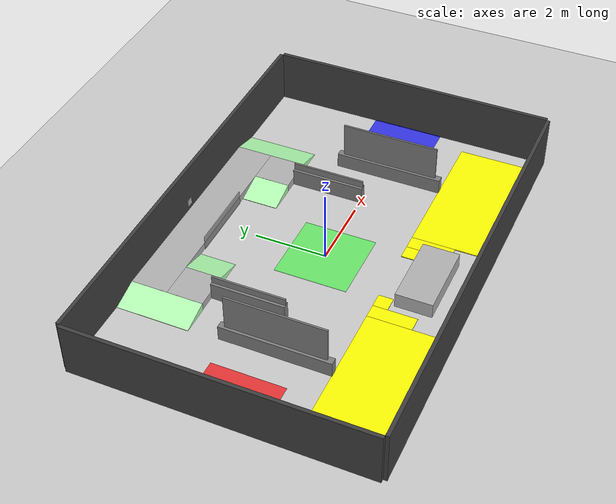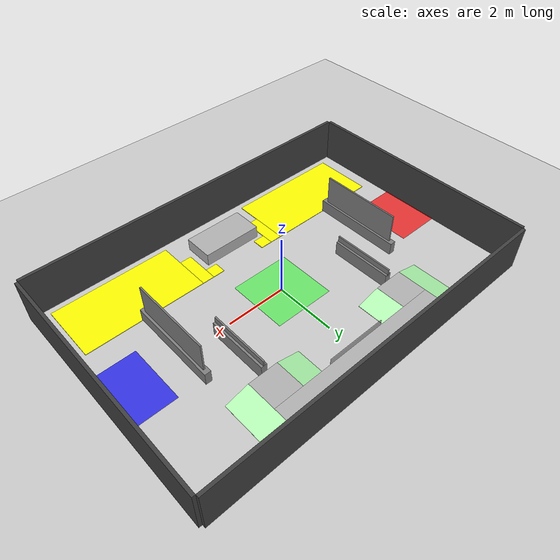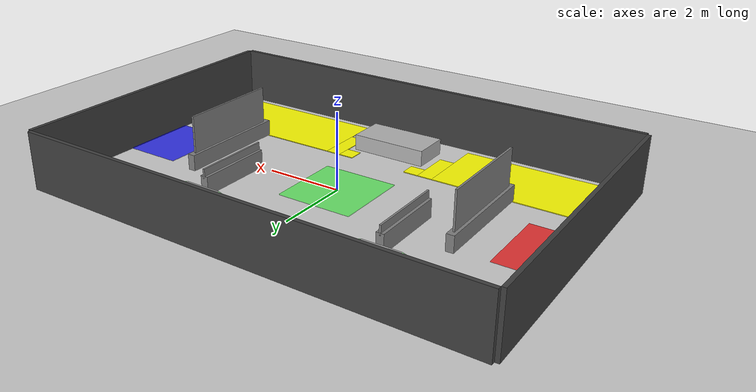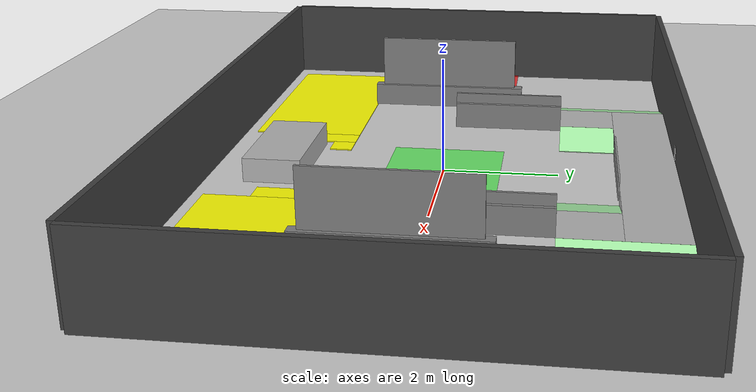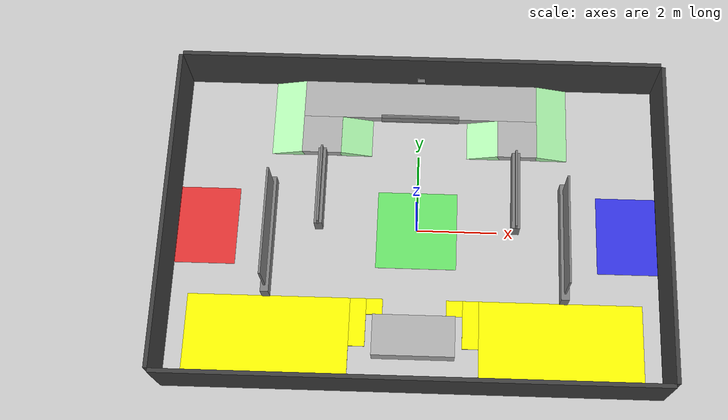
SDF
<?xml version="1.0" ?>
<sdf version="1.6">
  <world name="competition_world">

    <include>
      <uri>model://sun</uri>
    </include>

    <include>
      <uri>model://ground_plane</uri>
    </include>

    <!-- Competition arena walls (18m x 12m from your map) -->
    <model name="arena">
      <static>true</static>
      <pose>0 0 0 0 0 0</pose>

      <!--Note, the bounding walls are 0.1m thickness, and the position offset is half of that at 0.05m-->
      <!-- this is so our dimensions are exact, and are walls aren't poking into the map by a small amount-->

      <!-- North wall, +0.05 offset for wall thickness -->
      <link name="north_wall">
        <pose>0 4.05 0.75 0 0 0</pose>
        <collision name="collision">
          <geometry>
            <box>
              <size>12 0.1 1.5</size>
            </box>
          </geometry>
        </collision>
        <visual name="visual">
          <geometry>
            <box>
              <size>12 0.1 1.5</size>
            </box>
          </geometry>
          <material>
            <ambient>0.25 0.25 0.25 1</ambient>
            <diffuse>0.25 0.25 0.25 1</diffuse>
          </material>
        </visual>
      </link>

      <!-- South wall,  minus 0.05 offset-->
      <link name="south_wall">
        <pose>0 -4.05 0.75 0 0 0</pose>
        <collision name="collision">
          <geometry>
            <box>
              <size>12 0.1 1.5</size>
            </box>
          </geometry>
        </collision>
        <visual name="visual">
          <geometry>
            <box>
              <size>12 0.1 1.5</size>
            </box>
          </geometry>
          <material>
            <ambient>0.25 0.25 0.25 1</ambient>
            <diffuse>0.25 0.25 0.25 1</diffuse>
          </material>
        </visual>
      </link>

      <!-- East wall, plus 0.05 offset -->
      <link name="east_wall">
        <pose>6.05 0 0.75 0 0 0</pose>
        <collision name="collision">
          <geometry>
            <box>
              <size>0.1 8 1.5</size>
            </box>
          </geometry>
        </collision>
        <visual name="visual">
          <geometry>
            <box>
              <size>0.1 8 1.5</size>
            </box>
          </geometry>
          <material>
            <ambient>0.25 0.25 0.25 1</ambient>
            <diffuse>0.25 0.25 0.25 1</diffuse>
          </material>
        </visual>
      </link>

      <!-- West wall, minus 0.05 offset  -->
      <link name="west_wall">
        <pose>-6.05 0 0.75 0 0 0</pose>
        <collision name="collision">
          <geometry>
            <box>
              <size>0.1 8 1.5</size>
            </box>
          </geometry>
        </collision>
        <visual name="visual">
          <geometry>
            <box>
              <size>0.1 8 1.5</size>
            </box>
          </geometry>
          <material>
            <ambient>0.25 0.25 0.25 1</ambient>
            <diffuse>0.25 0.25 0.25 1</diffuse>
          </material>
        </visual>
      </link>

      <!-- West inner wall -->
      <link name="west_inner_wall_bottom"> <!-- -3.750 + 0.1 to account for width in x dir-->
        <pose>-3.650 -0.317 0.24 0 0 0</pose>
        <collision name="collision">
          <geometry>
            <box>
              <size>0.2 3.0 0.42</size>
            </box>
          </geometry>
        </collision>
        <visual name="visual">
          <geometry>
            <box>
              <size>0.2 3.0 0.42</size>
            </box>
          </geometry>
          <material>
            <ambient>0.5 0.5 0.5 1</ambient>
            <diffuse>0.5 0.5 0.5 1</diffuse>
          </material>
        </visual>
      </link>

      <link name="west_inner_wall_top"> <!-- +0.1 to account for width in x dir-->
        <pose>-3.650 -0.317 0.9315 0 0 0</pose>
        <collision name="collision">
          <geometry>
            <box>
              <size>0.05 2.7 0.987</size>
            </box>
          </geometry>
        </collision>
        <visual name="visual">
          <geometry>
            <box>
              <size>0.05 2.7 0.987</size>
            </box>
          </geometry>
          <material>
            <ambient>0.5 0.5 0.5 1</ambient>
            <diffuse>0.5 0.5 0.5 1</diffuse>
          </material>
        </visual>
      </link>

      <link name="mid_left_wall_bottom"> <!-- +0.1 to account for width in x dir?? may need to adjust-->
        <pose>-2.450 0.9873 0.24 0 0 0</pose>
        <collision name="collision">
          <geometry>
            <box>
              <size>0.2 2.0254 0.48</size>
            </box>
          </geometry>
        </collision>
        <visual name="visual">
          <geometry>
            <box>
              <size>0.2 2.0254 0.48</size>
            </box>
          </geometry>
          <material>
            <ambient>0.5 0.5 0.5 1</ambient>
            <diffuse>0.5 0.5 0.5 1</diffuse>
          </material>
        </visual>
      </link>

      <link name="mid_left_wall_top"> <!-- +0.1 to account for width in x dir?? may need to adjust-->
        <pose>-2.450 0.9873 0.545 0 0 0 0</pose>
        <collision name="collision">
          <geometry>
            <box>
              <size>0.05 2.0254 0.25</size>
            </box>
          </geometry>
        </collision>
        <visual name="visual">
          <geometry>
            <box>
              <size>0.05 2.0254 0.25</size>
            </box>
          </geometry>
          <material>
            <ambient>0.5 0.5 0.5 1</ambient>
            <diffuse>0.5 0.5 0.5 1</diffuse>
          </material>
        </visual>
      </link>

      <!-- east inner wall -->
      <link name="east_inner_wall_bottom">
        <pose>3.650 -0.317 0.24 0 0 0</pose>
        <collision name="collision">
          <geometry>
            <box>
              <size>0.2 3.0 0.42</size>
            </box>
          </geometry>
        </collision>
        <visual name="visual">
          <geometry>
            <box>
              <size>0.2 3.0 0.42</size>
            </box>
          </geometry>
          <material>
            <ambient>0.5 0.5 0.5 1</ambient>
            <diffuse>0.5 0.5 0.5 1</diffuse>
          </material>
        </visual>
      </link>

      <link name="east_inner_wall_top">
        <pose>3.650 -0.317 0.9315 0 0 0</pose>
        <collision name="collision">
          <geometry>
            <box>
              <size>0.05 2.7 0.987</size>
            </box>
          </geometry>
        </collision>
        <visual name="visual">
          <geometry>
            <box>
              <size>0.05 2.7 0.987</size>
            </box>
          </geometry>
          <material>
            <ambient>0.5 0.5 0.5 1</ambient>
            <diffuse>0.5 0.5 0.5 1</diffuse>
          </material>
        </visual>
      </link>

      <link name="mid_right_wall_bottom">
        <pose>2.450 0.9873 0.24 0 0 0</pose>
        <collision name="collision">
          <geometry>
            <box>
              <size>0.2 2.0254 0.48</size>
            </box>
          </geometry>
        </collision>
        <visual name="visual">
          <geometry>
            <box>
              <size>0.2 2.0254 0.48</size>
            </box>
          </geometry>
          <material>
            <ambient>0.5 0.5 0.5 1</ambient>
            <diffuse>0.5 0.5 0.5 1</diffuse>
          </material>
        </visual>
      </link>

      <link name="mid_right_wall_top">
        <pose>2.450 0.9873 0.545 0 0 0 0</pose>
        <collision name="collision">
          <geometry>
            <box>
              <size>0.05 2.0254 0.25</size>
            </box>
          </geometry>
        </collision>
        <visual name="visual">
          <geometry>
            <box>
              <size>0.05 2.0254 0.25</size>
            </box>
          </geometry>
          <material>
            <ambient>0.5 0.5 0.5 1</ambient>
            <diffuse>0.5 0.5 0.5 1</diffuse>
          </material>
        </visual>
      </link>

      <link name="centre_box_obstacle"> <!--should be -2.700, but for some reason, there is no gap between this box small tile (see official map)-->
        <pose>0 -2.800 0.24 0 0 0</pose>
        <collision name="collision">
          <geometry>
            <box>
              <size> 2 1 0.42</size>
            </box>
          </geometry>
        </collision>
        <visual name="visual">
          <geometry>
            <box>
              <size>2 1 0.42</size>
            </box>
          </geometry>
          <material>
            <ambient>0.7 0.7 0.7 1</ambient>
            <diffuse>0.7 0.7 0.7 1</diffuse>
          </material>
        </visual>
      </link>

      <!--For the slow zones, I am creating a larger one (the big block), a medium one (3 tiles adjacent)-->
      <!-- and then one additional tile (look at the schematic on the official ARC robotics website), on each side-->

      <link name="slow_zone_large_left">
        <pose>-3.580 -2.800 0.01 0 0 0</pose>

        <collision name="collision">
          <geometry>
            <box>
              <size>4 2 0.02</size>
            </box>
          </geometry>

          <surface>
            <friction>
              <ode>
                <!-- Lower values → less traction -->
                <mu>0.1</mu>
                <mu2>0.1</mu2>
              </ode>
            </friction>
          </surface>
        </collision>

        <visual name="visual">
          <geometry>
            <box>
              <size>4 2 0.02</size>
            </box>
          </geometry>
          <material>
            <ambient>1 1 0 1</ambient>   <!-- yellow -->
            <diffuse>1 1 0 1</diffuse>
          </material>
        </visual>
      </link>

      <link name="slow_zone_medium_left">
        <pose>-1.38 -2.4 0.01 0 0 0</pose>

        <collision name="collision">
          <geometry>
            <box>
              <size>0.4 1.2 0.02</size>
            </box>
          </geometry>

          <surface>
            <friction>
              <ode>
                <!-- Lower values → less traction -->
                <mu>0.1</mu>
                <mu2>0.1</mu2>
              </ode>
            </friction>
          </surface>
        </collision>

        <visual name="visual">
          <geometry>
            <box>
              <size>0.4 1.2 0.02</size>
            </box>
          </geometry>
          <material>
            <ambient>1 1 0 1</ambient>
            <diffuse>1 1 0 1</diffuse>
          </material>
        </visual>
      </link>

      <link name="slow_zone_small_left">
        <pose>-0.98 -2.0 0.01 0 0 0</pose>

        <collision name="collision">
          <geometry>
            <box>
              <size>0.4 0.4 0.02</size>
            </box>
          </geometry>

          <surface>
            <friction>
              <ode>
                <!-- Lower values → less traction -->
                <mu>0.1</mu>
                <mu2>0.1</mu2>
              </ode>
            </friction>
          </surface>
        </collision>

        <visual name="visual">
          <geometry>
            <box>
              <size>0.4 0.4 0.02</size>
            </box>
          </geometry>
          <material>
            <ambient>1 1 0 1</ambient>
            <diffuse>1 1 0 1</diffuse>
          </material>
        </visual>
      </link>

      <link name="slow_zone_large_right">
        <pose>3.580 -2.800 0.01 0 0 0</pose>

        <collision name="collision">
          <geometry>
            <box>
              <size>4 2 0.02</size>
            </box>
          </geometry>

          <surface>
            <friction>
              <ode>
                <!-- Lower values → less traction -->
                <mu>0.1</mu>
                <mu2>0.1</mu2>
              </ode>
            </friction>
          </surface>
        </collision>

        <visual name="visual">
          <geometry>
            <box>
              <size>4 2 0.02</size>
            </box>
          </geometry>
          <material>
            <ambient>1 1 0 1</ambient>   <!-- yellow -->
            <diffuse>1 1 0 1</diffuse>
          </material>
        </visual>
      </link>

      <link name="slow_zone_medium_right">
        <pose>1.38 -2.4 0.01 0 0 0</pose>

        <collision name="collision">
          <geometry>
            <box>
              <size>0.4 1.2 0.02</size>
            </box>
          </geometry>

          <surface>
            <friction>
              <ode>
                <!-- Lower values → less traction -->
                <mu>0.1</mu>
                <mu2>0.1</mu2>
              </ode>
            </friction>
          </surface>
        </collision>

        <visual name="visual">
          <geometry>
            <box>
              <size>0.4 1.2 0.02</size>
            </box>
          </geometry>
          <material>
            <ambient>1 1 0 1</ambient>
            <diffuse>1 1 0 1</diffuse>
          </material>
        </visual>
      </link>

      <link name="slow_zone_small_right">
        <pose>0.98 -2.0 0.01 0 0 0</pose>

        <collision name="collision">
          <geometry>
            <box>
              <size>0.4 0.4 0.02</size>
            </box>
          </geometry>

          <surface>
            <friction>
              <ode>
                <!-- Lower values → less traction -->
                <mu>0.1</mu>
                <mu2>0.1</mu2>
              </ode>
            </friction>
          </surface>
        </collision>

        <visual name="visual">
          <geometry>
            <box>
              <size>0.4 0.4 0.02</size>
            </box>
          </geometry>
          <material>
            <ambient>1 1 0 1</ambient>
            <diffuse>1 1 0 1</diffuse>
          </material>
        </visual>
      </link>

      <!--high ground-->
      <link name="high_ground_back_row">
        <pose>0 3.500 0.105 0 0 0</pose>
        <collision name="collision">
          <geometry>
            <box>
              <size> 6 1 0.21</size>
            </box>
          </geometry>
        </collision>
        <visual name="visual">
          <geometry>
            <box>
              <size>6 1 0.21</size>
            </box>
          </geometry>
          <material>
            <ambient>0.7 0.7 0.7 1</ambient>
            <diffuse>0.7 0.7 0.7 1</diffuse>
          </material>
        </visual>
      </link>

      <link name="high_ground_front_row_left_tile">
        <pose>-2.5 2.500 0.105 0 0 0</pose>
        <collision name="collision">
          <geometry>
            <box>
              <size> 1 1 0.21</size>
            </box>
          </geometry>
        </collision>
        <visual name="visual">
          <geometry>
            <box>
              <size>1 1 0.21</size>
            </box>
          </geometry>
          <material>
            <ambient>0.7 0.7 0.7 1</ambient>
            <diffuse>0.7 0.7 0.7 1</diffuse>
          </material>
        </visual>
      </link>

      <link name="high_ground_front_row_right_tile">
        <pose>2.5 2.500 0.105 0 0 0</pose>
        <collision name="collision">
          <geometry>
            <box>
              <size> 1 1 0.21</size>
            </box>
          </geometry>
        </collision>
        <visual name="visual">
          <geometry>
            <box>
              <size>1 1 0.21</size>
            </box>
          </geometry>
          <material>
            <ambient>0.7 0.7 0.7 1</ambient>
            <diffuse>0.7 0.7 0.7 1</diffuse>
          </material>
        </visual>
      </link>

      <link name="long_ramp_back_row_left"> <!--These ramps are not perfectly accurate, they may be off by +-10mm -->
        <pose>-3.3642 3 0.003 0 -0.2618 0</pose>
        <collision name="collision">
          <geometry>
            <box>
              <size> 0.81135 2 0.21</size>
            </box>
          </geometry>
        </collision>
        <visual name="visual">
          <geometry>
            <box>
              <size>0.81135 2 0.21</size>
            </box>
          </geometry>
          <material>
            <ambient>0.7 1 0.7 1</ambient>
            <diffuse>0.7 1 0.7 1</diffuse>
          </material>
        </visual>
      </link>

      <link name="small_ramp_back_row_left"> <!--These ramps are not perfectly accurate, they may be off by +-10mm -->
        <pose>-1.635 2.5 0.003 0 0.2618 0</pose>
        <collision name="collision">
          <geometry>
            <box>
              <size> 0.81135 1 0.21</size>
            </box>
          </geometry>
        </collision>
        <visual name="visual">
          <geometry>
            <box>
              <size>0.81135 1 0.21</size>
            </box>
          </geometry>
          <material>
            <ambient>0.7 1 0.7 1</ambient>
            <diffuse>0.7 1 0.7 1</diffuse>
          </material>
        </visual>
      </link>

      <link name="long_ramp_back_row_right"> <!--These ramps are not perfectly accurate, they may be off by +-10mm -->
        <pose>3.3642 3 0.003 0 0.2618 0</pose>
        <collision name="collision">
          <geometry>
            <box>
              <size> 0.81135 2 0.21</size>
            </box>
          </geometry>
        </collision>
        <visual name="visual">
          <geometry>
            <box>
              <size>0.81135 2 0.21</size>
            </box>
          </geometry>
          <material>
            <ambient>0.7 1 0.7 1</ambient>
            <diffuse>0.7 1 0.7 1</diffuse>
          </material>
        </visual>
      </link>

      <link name="small_ramp_back_row_right"> <!--These ramps are not perfectly accurate, they may be off by +-10mm -->
        <pose>1.635 2.5 0.003 0 -0.2618 0</pose>
        <collision name="collision">
          <geometry>
            <box>
              <size> 0.81135 1 0.21</size>
            </box>
          </geometry>
        </collision>
        <visual name="visual">
          <geometry>
            <box>
              <size>0.81135 1 0.21</size>
            </box>
          </geometry>
          <material>
            <ambient>0.7 1 0.7 1</ambient>
            <diffuse>0.7 1 0.7 1</diffuse>
          </material>
        </visual>
      </link>

      <link name="high_ground_wall">
        <pose>0 2.9905 0.205 0 0 0</pose>
        <collision name="collision">
          <geometry>
            <box>
              <size> 2 0.019 0.41</size>
            </box>
          </geometry>
        </collision>
        <visual name="visual">
          <geometry>
            <box>
              <size>2 0.019 0.41</size>
            </box>
          </geometry>
          <material>
            <ambient>0.6 0.6 0.6 0.8</ambient>
            <diffuse>0.6 0.6 0.6 0.8</diffuse>
          </material>
        </visual>
      </link>

      <!-- Center capture point - DO WE NEED A COLLISION BOX? -->
      <link name="capture_point">
        <pose>0 0 0.01 0 0 0</pose>
        <visual name="visual">
          <geometry>
            <box>
              <size> 2 2 0.02</size>
            </box>
          </geometry>
          <material>
            <ambient>0.3 1.0 0.3 0.7</ambient> <!--lime green-->
            <diffuse>0.3 1.0 0.3 0.7</diffuse>
          </material>
        </visual>
      </link>

      <!-- Red starting zone - DO WE NEED A COLLISION BOX? -->
      <link name="red_starting_zone">
        <pose>-5.250 0 0.01 0 0 0</pose>
        <visual name="visual">
          <geometry>
            <box>
              <size> 1.5 2 0.02</size>
            </box>
          </geometry>
          <material>
            <ambient>1.0 0 0 0.7</ambient> <!--red -->
            <diffuse>1.0 0 0 0.7</diffuse>
          </material>
        </visual>
      </link>

      <!--Blue starting zone - DO WE NEED A COLLISION BOX? -->
      <link name="blue_starting_zone">
        <pose>5.250 0 0.01 0 0 0</pose>
        <visual name="visual">
          <geometry>
            <box>
              <size> 1.5 2 0.02</size>
            </box>
          </geometry>
          <material>
            <ambient>0 0 1 0.7</ambient> <!--red -->
            <diffuse>0 0 1 0.7</diffuse>
          </material>
        </visual>
      </link>

    </model>

    <!-- AprilTag 36h11 marker for vision-based detection -->
    <include>
      <name>Apriltag36_11_00000</name>
      <pose>0 3.95 0.5 1.5708 0 0</pose>
      <static>true</static>
      <uri>model://Apriltag36_11_00000</uri>
    </include>

  </world>
</sdf>

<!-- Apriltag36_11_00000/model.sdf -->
<sdf version='1.6'>
  <model name='Apriltag36_11_00000'>
    <static>true</static>
    <link name='main'>
      <visual name='main_Visual'>
        <geometry>
          <box>
            <size>0.2 0.2 0.01</size>
          </box>
        </geometry>
        <material>
          <script>
            <uri>model://Apriltag36_11_00000/materials/scripts</uri>
            <uri>model://Apriltag36_11_00000/materials/textures</uri>
            <name>Apriltag36_11_00000</name>
          </script>
        </material>
      </visual>
    </link>
  </model>
</sdf>
